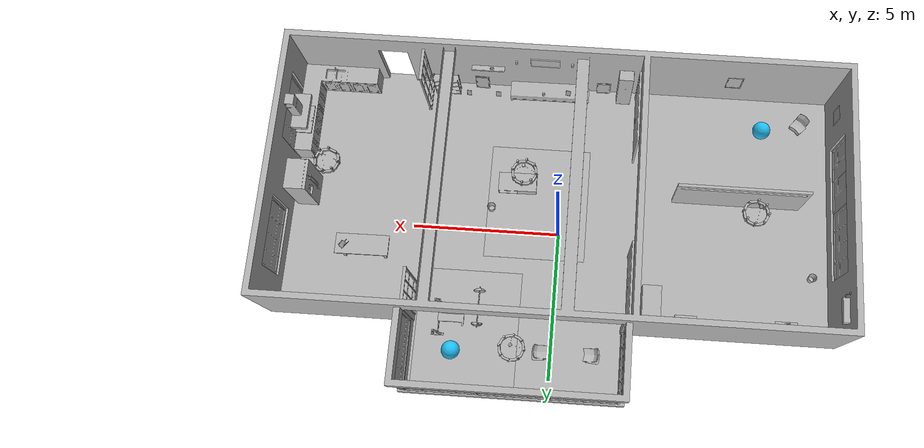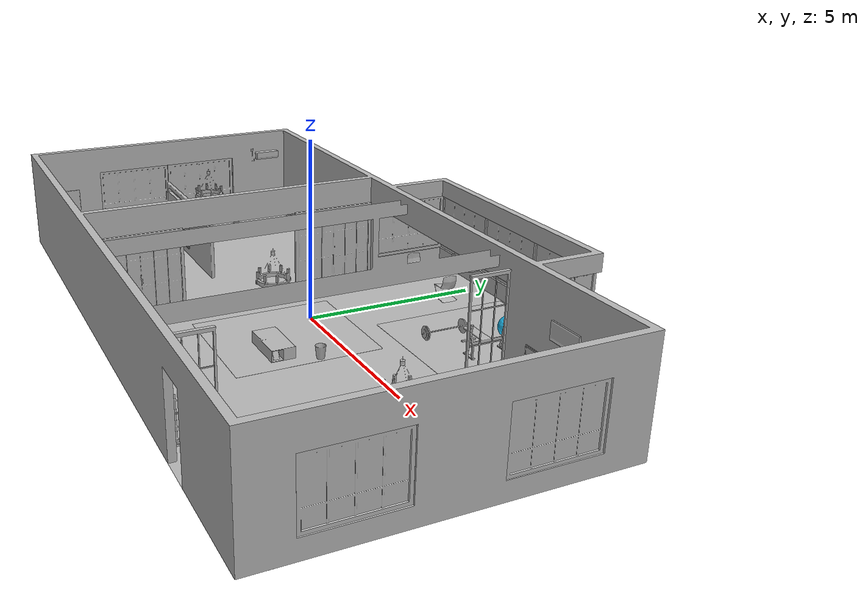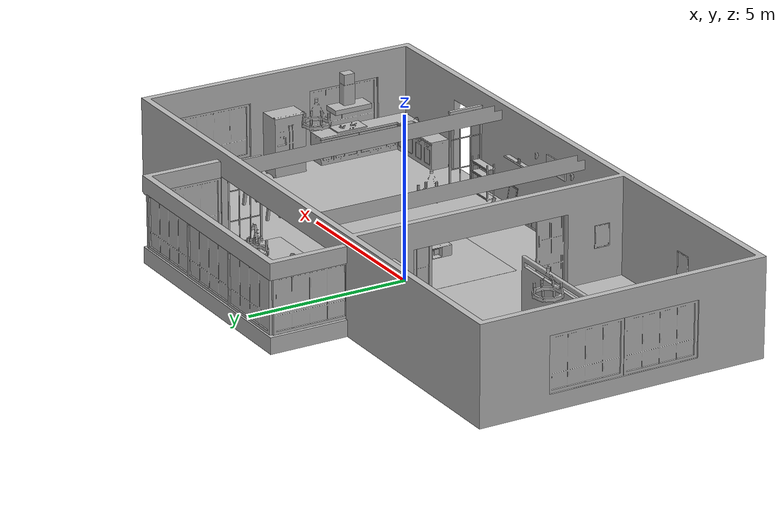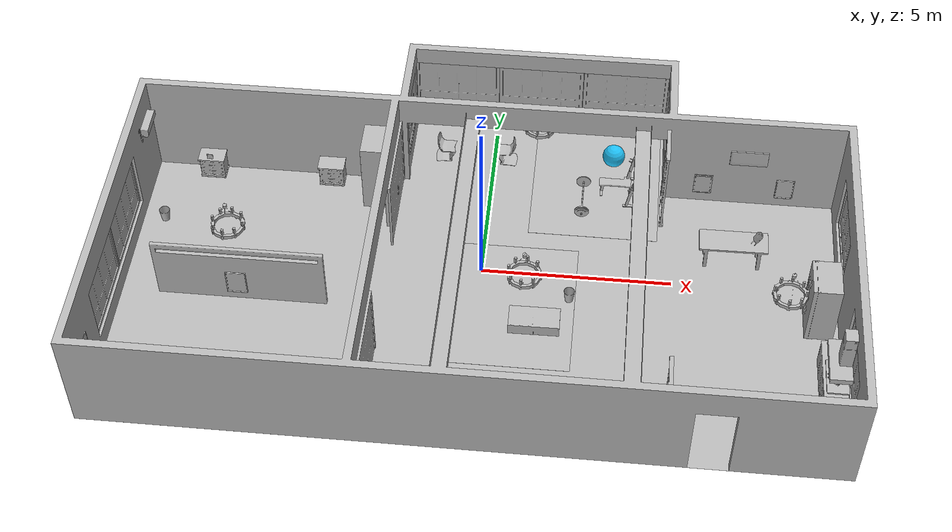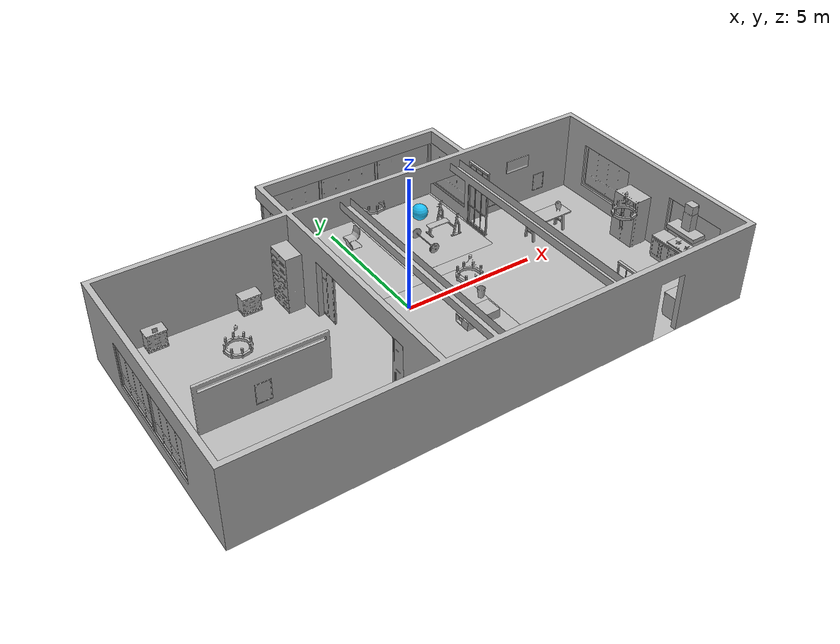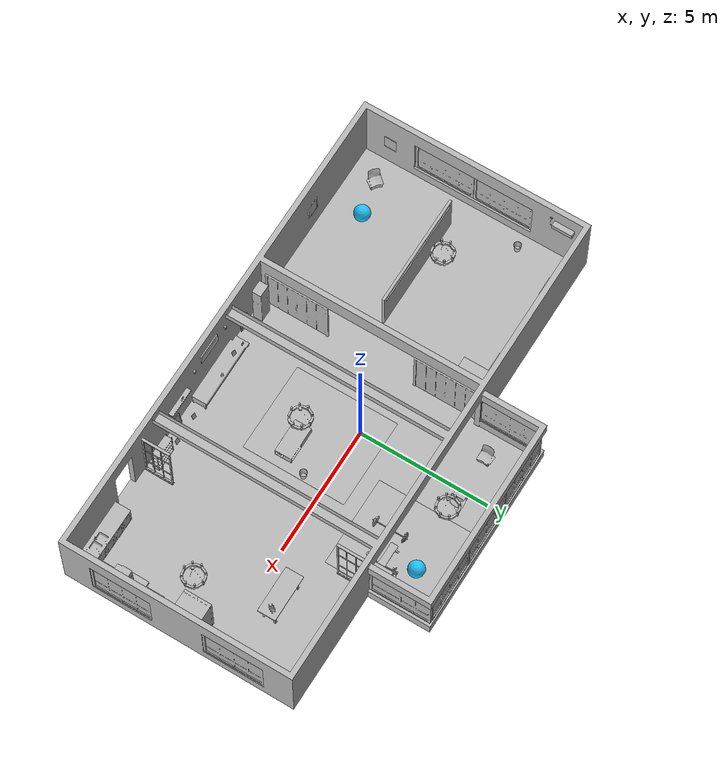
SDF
<sdf version="1.9">
 <world name="default">
  <plugin filename="libignition-gazebo-physics-system.so" name="ignition::gazebo::systems::Physics"/>
  <plugin filename="libignition-gazebo-user-commands-system.so" name="ignition::gazebo::systems::UserCommands"/>
  <plugin filename="libignition-gazebo-scene-broadcaster-system.so" name="ignition::gazebo::systems::SceneBroadcaster"/>
  <plugin filename="libignition-gazebo-sensors-system.so" name="ignition::gazebo::systems::Sensors">
   <render_engine>ogre2</render_engine>
  </plugin>
  <gravity>0 0 -9.8</gravity>
  <magnetic_field>6e-06 2.3e-05 -4.2e-05</magnetic_field>
  <atmosphere type="adiabatic"/>
  <physics name="default_physics" default="0" type="ode">
   <max_step_size>0.001</max_step_size>
   <real_time_factor>1</real_time_factor>
   <real_time_update_rate>1000</real_time_update_rate>
  </physics>
  <plugin filename="libignition-gazebo-sensors-system.so" name="ignition::gazebo::systems::Sensors">
   <render_engine>ogre2</render_engine>
  </plugin>
  <scene>
   <ambient>0.4 0.4 0.4 1</ambient>
   <background>0.7 0.7 0.7 1</background>
   <shadows>false</shadows>
   <grid>false</grid>
   <origin_visual>false</origin_visual>
  </scene>
  <spherical_coordinates>
   <surface_model>EARTH_WGS84</surface_model>
   <latitude_deg>0</latitude_deg>
   <longitude_deg>0</longitude_deg>
   <elevation>0</elevation>
   <heading_deg>0</heading_deg>
  </spherical_coordinates>
  <model name="AirconditionerA_01_001">
   <static>true</static>
   <include><uri>model://aws_robomaker_residential_AirconditionerA_01</uri></include>
   <pose>-9.199410 2.411230 2.084544 0 -0 0</pose>
  </model>
  <model name="AirconditionerB_01_001">
   <static>true</static>
   <include><uri>model://aws_robomaker_residential_AirconditionerB_01</uri></include>
   <pose>-2.004656 -5.226610 0.003485 0 -0 0</pose>
  </model>
  <model name="Ball_01_001">
   <static>true</static>
   <include><uri>model://aws_robomaker_residential_Ball_01</uri></include>
   <pose>3.295503 4.225674 0.318684 0 -0 0</pose>
  </model>
  <model name="Ball_01_003">
   <static>true</static>
   <include><uri>model://aws_robomaker_residential_Ball_01</uri></include>
   <pose>-6.945503 -4.22174 0.318684 0 -0 0</pose>
  </model>
  <model name="NightStand_01_001">
   <static>true</static>
   <include><uri>model://aws_robomaker_residential_NightStand_01</uri></include>
   <pose>-7.725510 2.860420 0.005258 -0.000002 0 0</pose>
  </model>
  <model name="NightStand_01_002">
   <static>true</static>
   <include><uri>model://aws_robomaker_residential_NightStand_01</uri></include>
   <pose>-4.407341 2.860420 0.005256 0 0.000002 0</pose>
  </model>
  <model name="Board_01_001">
   <static>true</static>
   <include><uri>model://aws_robomaker_residential_Board_01</uri></include>
   <pose>2.779073 -5.392703 1.538173 0 -0 0</pose>
  </model>
  <model name="ChairD_01_001">
   <static>true</static>
   <include><uri>model://aws_robomaker_residential_ChairD_01</uri></include>
   <pose>-1.380775 4.104456 0 0 -0 0</pose>
  </model>
  <model name="ChairD_01_002">
   <static>true</static>
   <include><uri>model://aws_robomaker_residential_ChairD_01</uri></include>
   <pose>0.325214 4.104456 0 0 -0 -3.138741</pose>
  </model>
  <model name="ChairD_01_003">
   <static>true</static>
   <include><uri>model://aws_robomaker_residential_ChairD_01</uri></include>
   <pose>-8.270775 -4.504456 0 0 -0 0.869673</pose>
  </model>
  <model name="Chandelier_01_001">
   <static>true</static>
   <include><uri>model://aws_robomaker_residential_Chandelier_01</uri></include>
   <pose>1.221061 4.155740 1.295000 0 -0 0</pose>
  </model>
  <model name="Chandelier_01_002">
   <static>true</static>
   <include><uri>model://aws_robomaker_residential_Chandelier_01</uri></include>
   <pose>-6.451061 -0.692040 1.810000 0 -0 0</pose>
  </model>
  <model name="Chandelier_01_003">
   <static>true</static>
   <include><uri>model://aws_robomaker_residential_Chandelier_01</uri></include>
   <pose>7.824061 -1.59 1.7510000 0 -0 0</pose>
  </model>
  <model name="Chandelier_01_004">
   <static>true</static>
   <include><uri>model://aws_robomaker_residential_Chandelier_01</uri></include>
   <pose>1.221061 -1.592040 1.7873000 0 -0 0</pose>
  </model>
  <model name="Carpet_01_001">
   <static>true</static>
   <include><uri>model://aws_robomaker_residential_Carpet_01</uri></include>
   <pose>0.785050 -1.106647 0.001106 0 -0 0</pose>
  </model>
  <model name="Carpet_01_002">
   <static>true</static>
   <include><uri>model://aws_robomaker_residential_Carpet_01</uri></include>
   <pose>2.854050 3.45 0.000585 0 -0 0</pose>
  </model>
  <model name="SecurityCamera_01_001">
   <static>true</static>
   <include><uri>model://aws_robomaker_residential_SecurityCamera_01</uri></include>
   <pose>0.842134 -4.996294 0.495067 0 -0 -2.841039</pose>
  </model>
  <model name="CoffeeTable_01_001">
   <static>true</static>
   <include><uri>model://aws_robomaker_residential_CoffeeTable_01</uri></include>
   <pose>1.512301 -1.733438 0.041983 0.000000 0.000000 0.01000</pose>
  </model>
  <model name="CookingBench_01_001">
   <include><uri>model://aws_robomaker_residential_CookingBench_01</uri></include>
   <pose>9.038383 -3.351140 0.903610 0 -0 3.137133</pose>
   <static>true</static>
  </model>
  <model name="KitchenTable_01_001">
   <static>true</static>
   <include><uri>model://aws_robomaker_residential_KitchenTable_01</uri></include>
   <pose>6.55269 0.951173 -0.000006 0 -0 -1.564130</pose>
  </model>
  <model name="Dumbbell_01_001">
   <static>true</static>
   <include><uri>model://aws_robomaker_residential_Dumbbell_01</uri></include>
   <pose>2.512849 2.717787 0.002183 0 -0 0</pose>
  </model>
  <model name="FitnessEquipment_01_001">
   <static>true</static>
   <include><uri>model://aws_robomaker_residential_FitnessEquipment_01</uri></include>
   <pose>3.484720 3.169104 0.003168 0 -0 0</pose>
  </model>
  <model name="FoldingDoor_01_001">
   <static>true</static>
   <include><uri>model://aws_robomaker_residential_FoldingDoor_01</uri></include>
   <pose>-2.461096 1.844219 0.041881 0 -0 0</pose>
  </model>
  <model name="FoldingDoor_01_002">
   <static>true</static>
   <include><uri>model://aws_robomaker_residential_FoldingDoor_01</uri></include>
   <pose>-2.461096 -4.053320 0.041881 0 -0 0</pose>
  </model>
  <model name="HouseWallB_01_001">
   <static>true</static>
   <include><uri>model://aws_robomaker_residential_HouseWallB_01</uri></include>
  </model>
  <model name="FloorB_01_001">
   <static>true</static>
   <include><uri>model://aws_robomaker_residential_FloorB_01</uri></include>
  </model>
  <model name="FoldingDoor_02_001">
   <static>true</static>
   <include><uri>model://aws_robomaker_residential_FoldingDoor_02</uri></include>
   <pose>4.674231 2.46451 0 0 -0 3.14159</pose>
  </model>
  <model name="FoldingDoor_02_002">
   <static>true</static>
   <include><uri>model://aws_robomaker_residential_FoldingDoor_02</uri></include>
   <pose>4.8912 -4.84968 0 0 -0 0</pose>
  </model>
  <model name="KitchenCabinet_01_001">
   <static>true</static>
   <include><uri>model://aws_robomaker_residential_KitchenCabinet_01</uri></include>
   <pose>8.002009 -3.836509 0.012068 0 -0 -3.140001</pose>
  </model>
  <model name="LightC_01_001">
   <static>true</static>
   <include><uri>model://aws_robomaker_residential_LightC_01</uri></include>
   <pose>1.769567 -5.4443710 2.000000 0 -0 0</pose>
  </model>
  <model name="LightC_01_002">
   <static>true</static>
   <include><uri>model://aws_robomaker_residential_LightC_01</uri></include>
   <pose>-0.138245 -5.4443710 2.000000 0 -0 0</pose>
  </model>
  <model name="PortraitA_01">
   <static>true</static>
   <include><uri>model://aws_robomaker_residential_PortraitA_01</uri></include>
   <pose>-2.712360 -4.817539 1.00000 0 -0 1.566796</pose>
  </model>
  <model name="PortraitB_01">
   <static>true</static>
   <include><uri>model://aws_robomaker_residential_PortraitB_01</uri></include>
   <pose>-1.279683 -5.429630 0.0 -0.076901 0 -3.116718</pose>
  </model>
  <model name="PortraitB_02">
   <static>true</static>
   <include><uri>model://aws_robomaker_residential_PortraitB_02</uri></include>
   <pose>5.737017 3.080310 0.300000 0 -0 0</pose>
  </model>
  <model name="PortraitB_03">
   <static>true</static>
   <include><uri>model://aws_robomaker_residential_PortraitB_03</uri></include>
   <pose>3.071380 -5.349366 0.005494 -0.168428 0.0 3.104232</pose>
  </model>
  <model name="PortraitA_02">
   <static>true</static>
   <include><uri>model://aws_robomaker_residential_PortraitA_02</uri></include>
   <pose>7.937017 3.080310 0.300000 0 -0 3.14</pose>
  </model>
  <model name="PortraitC_01">
   <static>true</static>
   <include><uri>model://aws_robomaker_residential_PortraitC_01</uri></include>
   <pose>-9.294904 -4.526084 1.000000 0 -0 1.554734</pose>
  </model>
  <model name="PortraitD_01">
   <static>true</static>
   <include><uri>model://aws_robomaker_residential_PortraitD_01</uri></include>
   <pose>0.789763 -5.478725 1.800000 0 -0 3.138531</pose>
  </model>
  <model name="PortraitD_02">
   <static>true</static>
   <include><uri>model://aws_robomaker_residential_PortraitD_02</uri></include>
   <pose>6.870181 3.080310 1.488439 0 -0 0</pose>
  </model>
  <model name="PortraitE_01">
   <static>true</static>
   <include><uri>model://aws_robomaker_residential_PortraitE_01</uri></include>
   <pose>-5.773094 -5.492466 1.000000 0 -0 3.132627</pose>
  </model>
  <model name="PortraitE_02">
   <static>true</static>
   <include><uri>model://aws_robomaker_residential_PortraitE_02</uri></include>
   <pose>-6.193025 -1.590208 0.3 0 -0 0.004290</pose>
  </model>
  <model name="DeskPortraitA_01">
   <static>true</static>
   <include><uri>model://aws_robomaker_residential_DeskPortraitA_01</uri></include>
   <pose>-0.036864 -5.110156 0.498660 0 -0 2.927784</pose>
  </model>
  <model name="DeskPortraitA_02">
   <static>true</static>
   <include><uri>model://aws_robomaker_residential_DeskPortraitA_02</uri></include>
   <pose>2.046082 -1.892926 0.0703880 -0.018328 -0.000441 1.576216</pose>
  </model>
  <model name="DeskPortraitC_01">
   <static>true</static>
   <include><uri>model://aws_robomaker_residential_DeskPortraitC_01</uri></include>
   <pose>-7.746377 2.731075 0.694620 0.000488 -0.000359 -0.055499</pose>
  </model>
  <model name="DeskPortraitC_02">
   <static>true</static>
   <include><uri>model://aws_robomaker_residential_DeskPortraitC_02</uri></include>
   <pose>0.964613 -1.586951 0.127676 0.001614 -0.000545 -1.578699</pose>
  </model>
  <model name="DeskPortraitD_01">
   <static>true</static>
   <include><uri>model://aws_robomaker_residential_DeskPortraitD_01</uri></include>
   <pose>2.645560 -5.376225 1.573738 0 -0 -3.112826</pose>
  </model>
  <model name="DeskPortraitD_02">
   <static>true</static>
   <include><uri>model://aws_robomaker_residential_DeskPortraitD_02</uri></include>
   <pose>-0.589211 -5.109890 0.192145 -0.000015 -0.000174 -3.112544</pose>
  </model>
  <model name="DeskPortraitD_03">
   <static>true</static>
   <include><uri>model://aws_robomaker_residential_DeskPortraitD_03</uri></include>
   <pose>1.826729 -1.464881 0.126208 0.000010 0.000006 -3.114380</pose>
  </model>
  <model name="DeskPortraitD_04">
   <static>true</static>
   <include><uri>model://aws_robomaker_residential_DeskPortraitD_04</uri></include>
   <pose>4.302132 -5.176568 0.202496 0.007118 -0.000001 3.046683</pose>
  </model>
  <model name="DeskPortraitB_01">
   <static>true</static>
   <include><uri>model://aws_robomaker_residential_DeskPortraitB_01</uri></include>
   <pose>3.547376 -5.083898 -0.012660 -0.336622 -0.000001 3.046741</pose>
  </model>
  <model name="DeskPortraitB_02">
   <static>true</static>
   <include><uri>model://aws_robomaker_residential_DeskPortraitB_02</uri></include>
   <pose>2.486270 -5.102525 -0.012660 -0.336621 0.000000 3.046798</pose>
  </model>
  <model name="Rangehood_01_001">
   <static>true</static>
   <include><uri>model://aws_robomaker_residential_Rangehood_01</uri></include>
   <pose>9.019794 -3.369940 1.507605 0 -0 0</pose>
  </model>
  <model name="Refrigerator_01_001">
   <static>true</static>
   <include><uri>model://aws_robomaker_residential_Refrigerator_01</uri></include>
   <pose>8.702731 -1.032031 0 0 -0 -1.563499</pose>
  </model>
  <model name="ShoeRack_01_001">
   <static>true</static>
   <include><uri>model://aws_robomaker_residential_ShoeRack_01</uri></include>
   <pose>4.297978 -5.173566 0 0 -0 0</pose>
  </model>
  <model name="Tableware_01_001">
   <static>true</static>
   <include><uri>model://aws_robomaker_residential_Tableware_01</uri></include>
   <pose>7.15317 0.982767 0.817812 -0.001238 -0.000976 1.02476</pose>
  </model>
  <model name="Trash_01_001">
   <static>true</static>
   <include><uri>model://aws_robomaker_residential_Trash_01</uri></include>
   <pose>2.360151 -0.796238 0.011 0 -0 0</pose>
  </model>
  <model name="Trash_01_002">
   <static>true</static>
   <include><uri>model://aws_robomaker_residential_Trash_01</uri></include>
   <pose>-8.704151 1.00058 0.011 0 -0 0</pose>
  </model>
  <model name="TVCabinet_01_001">
   <static>true</static>
   <include><uri>model://aws_robomaker_residential_TVCabinet_01</uri></include>
   <pose>0.629509 -5.183576 -0.017049 0 -0 1.5792</pose>
  </model>
  <model name="RoomWall_01_001">
   <static>true</static>
   <include><uri>model://aws_robomaker_residential_RoomWall_01</uri></include>
   <pose>-6.097550 -1.496180 0.028124 0 -0 0</pose>
  </model>
  <model name="Wardrobe_01_001">
   <static>true</static>
   <include><uri>model://aws_robomaker_residential_Wardrobe_01</uri></include>
   <pose>-3.146710 2.476204 0.000704 0 -0 -1.569673</pose>
  </model>
  <model name="RoomWindow_01_001">
   <static>true</static>
   <include><uri>model://aws_robomaker_residential_RoomWindow_01</uri></include>
   <pose>-9.418600 -0.026285 0.502739 0 -0 0</pose>
  </model>
  <model name="RoomWindow_01_002">
   <static>true</static>
   <include><uri>model://aws_robomaker_residential_RoomWindow_01</uri></include>
   <pose>-9.418600 -2.374090 0.502739 0 -0 0</pose>
  </model>
  <model name="RoomWindow_01_003">
   <static>true</static>
   <include><uri>model://aws_robomaker_residential_RoomWindow_01</uri></include>
   <pose>9.422616 -3.373981 0.502739 0 -0 -3.136099</pose>
  </model>
  <model name="RoomWindow_01_004">
   <static>true</static>
   <include><uri>model://aws_robomaker_residential_RoomWindow_01</uri></include>
   <pose>9.422558 0.968520 0.496581 0 -0 -3.136099</pose>
  </model>
  <model name="RoomWindow_01_005">
   <static>true</static>
   <include><uri>model://aws_robomaker_residential_RoomWindow_01</uri></include>
   <pose>4.722317 4.470281 0.502739 0 -0 -3.136099</pose>
  </model>
  <model name="RoomWindow_01_006">
   <static>true</static>
   <include><uri>model://aws_robomaker_residential_RoomWindow_01</uri></include>
   <pose>3.488520 5.600688 0.502739 0 -0 -1.566274</pose>
  </model>
  <model name="RoomWindow_01_007">
   <static>true</static>
   <include><uri>model://aws_robomaker_residential_RoomWindow_01</uri></include>
   <pose>1.140949 5.600688 0.502739 0 -0 -1.566274</pose>
  </model>
  <model name="RoomWindow_01_008">
   <static>true</static>
   <include><uri>model://aws_robomaker_residential_RoomWindow_01</uri></include>
   <pose>-1.199340 5.600688 0.502739 0 -0 -1.566274</pose>
  </model>
  <model name="RoomWindow_01_009">
   <static>true</static>
   <include><uri>model://aws_robomaker_residential_RoomWindow_01</uri></include>
   <pose>-2.396624 4.387607 0.502739 0 -0 0</pose>
  </model>
  <light name="LivingRoom_CeilingLight_0" type="point">
   <pose>1.194296 4.155759 2.2 0 -0 0</pose>
   <diffuse>0.5 0.5 0.5 1</diffuse>
   <specular>0.1 0.1 0.1 1</specular>
   <attenuation>
    <range>20</range>
    <constant>0.32</constant>
    <linear>0.01</linear>
    <quadratic>0.03</quadratic>
   </attenuation>
   <cast_shadows>0</cast_shadows>
   <direction>0 0 -1</direction>
  </light>
  <light name="LivingRoom_CeilingLight_1" type="point">
   <pose>1.194296 -1.589959 2.2 0 -0 0</pose>
   <diffuse>0.5 0.5 0.5 1</diffuse>
   <specular>0.1 0.1 0.1 1</specular>
   <attenuation>
    <range>20</range>
    <constant>0.05</constant>
    <linear>0.01</linear>
    <quadratic>0.09</quadratic>
   </attenuation>
   <cast_shadows>0</cast_shadows>
   <direction>0 0 -1</direction>
  </light>
  <light name="LivingRoom_WallLight_0" type="point">
   <pose>1.76956 -5.444370 2.2 0 -0 0</pose>
   <diffuse>0.24 0.24 0.24 1</diffuse>
   <specular>0.1 0.1 0.1 1</specular>
   <attenuation>
    <range>20</range>
    <constant>0.12</constant>
    <linear>0.00</linear>
    <quadratic>0.03</quadratic>
   </attenuation>
   <direction>0 0 -1</direction>
  </light>
  <light name="LivingRoom_WallLight_1" type="point">
   <pose>-0.13826 -5.444370 2.2 0 -0 0</pose>
   <diffuse>0.24 0.24 0.24 1</diffuse>
   <specular>0.1 0.1 0.1 1</specular>
   <attenuation>
    <range>20</range>
    <constant>0.12</constant>
    <linear>0.00</linear>
    <quadratic>0.03</quadratic>
   </attenuation>
   <direction>0 0 -1</direction>
  </light>
  <light name="TV_Light_0" type="point">
   <pose>0.8269 -4.939577 1.1 0 -0 0</pose>
   <diffuse>0.31372 0.31372 0.34901 1</diffuse>
   <specular>0.1 0.1 0.1 1</specular>
   <attenuation>
    <range>3</range>
    <constant>0.10</constant>
    <linear>0.04</linear>
    <quadratic>0.50</quadratic>
   </attenuation>
   <direction>0 0 -1</direction>
  </light>
  <light name="BedRoom_Portrait_Light_0" type="spot">
   <pose>-6.190379 -1.829697 1.5587 0.3 -0 0.0</pose>
   <diffuse>0.5 0.5 0.5 1</diffuse>
   <specular>0.1 0.1 0.1 1</specular>
   <attenuation>
    <range>20</range>
    <constant>0.50</constant>
    <linear>0.01</linear>
    <quadratic>0.00</quadratic>
   </attenuation>
   <spot><inner_angle>0.6</inner_angle><outer_angle>1.0</outer_angle><falloff>1.0</falloff></spot>
   <direction>0 0 -1</direction>
  </light>
  <light name="BedRoom_CeilingLight_0" type="point">
   <pose>-6.451061 -0.692040 2.000000 0 -0 0</pose>
   <diffuse>0.5 0.5 0.5 1</diffuse>
   <specular>0.1 0.1 0.1 1</specular>
   <attenuation>
    <range>20</range>
    <constant>0.32</constant>
    <linear>0.01</linear>
    <quadratic>0.03</quadratic>
   </attenuation>
   <cast_shadows>0</cast_shadows>
   <direction>0 0 -1</direction>
  </light>
  <light name="Kitchen_CeilingLight_0" type="point">
   <pose>7.8582 -1.5905 2.280000 0 -0 0</pose>
   <diffuse>0.5 0.5 0.5 1</diffuse>
   <specular>0.1 0.1 0.1 1</specular>
   <attenuation>
    <range>20</range>
    <constant>0.3</constant>
    <linear>0.01</linear>
    <quadratic>0.01</quadratic>
   </attenuation>
   <cast_shadows>0</cast_shadows>
   <direction>0 0 -1</direction>
  </light>
 </world>
</sdf>

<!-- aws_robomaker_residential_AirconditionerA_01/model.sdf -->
<sdf version="1.6">
  <model name="aws_robomaker_residential_AirconditionerA_01">
    <static>true</static>
    <link name="link">
      <inertial>
        <mass>1.0</mass>
        <inertia>
          <ixx>0.1</ixx>
          <ixy>0.0</ixy>
          <ixz>0.0</ixz>
          <iyy>0.1</iyy>
          <iyz>0.0</iyz>
          <izz>0.1</izz>
        </inertia>
      </inertial>
      <inertial>
        <mass>1</mass>
      </inertial>
      <collision name="collision">
        <geometry>
          <mesh>
            <uri>model://aws_robomaker_residential_AirconditionerA_01/meshes/aws_AirconditionerA_01_collision.DAE</uri>
            <scale>1 1 1</scale>
          </mesh>
        </geometry>
      </collision>
      <visual name="visual">
	    <geometry>
          <mesh>
            <uri>model://aws_robomaker_residential_AirconditionerA_01/meshes/aws_AirconditionerA_01_visual.DAE</uri>
          </mesh>
        </geometry>
      <meta> <layer> 1 </layer></meta>
</visual>
    </link>
	<static>1</static>
    <static>true</static>
</model>
</sdf>

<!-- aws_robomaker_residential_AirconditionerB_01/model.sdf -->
<sdf version="1.6">
  <model name="aws_robomaker_residential_AirconditionerB_01">
    <static>true</static>
    <link name="link">
      <inertial>
        <mass>1.0</mass>
        <inertia>
          <ixx>0.1</ixx>
          <ixy>0.0</ixy>
          <ixz>0.0</ixz>
          <iyy>0.1</iyy>
          <iyz>0.0</iyz>
          <izz>0.1</izz>
        </inertia>
      </inertial>
      <inertial>
        <mass>1</mass>
      </inertial>
      <collision name="collision">
        <geometry>
          <mesh>
	  <uri>model://aws_robomaker_residential_AirconditionerB_01/meshes/aws_AirconditionerB_01_collision.DAE</uri>
            <scale>1 1 1</scale>
          </mesh>
        </geometry>
      </collision>
      <visual name="visual">
	    <geometry>
          <mesh>
            <uri>model://aws_robomaker_residential_AirconditionerB_01/meshes/aws_AirconditionerB_01_visual.DAE</uri>
          </mesh>
        </geometry>
      <meta> <layer> 1 </layer></meta>
</visual>
    </link>
    <static>true</static>
</model>
</sdf>

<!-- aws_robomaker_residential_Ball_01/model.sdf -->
<sdf version="1.6">
  <model name="aws_robomaker_residential_Ball_01">
    <link name="link">
      <inertial>
        <mass>0.12</mass>
        <!-- 2r = 62cm -->
          <inertia>
            <ixx>0.030752</ixx>
            <ixy>0</ixy>
            <ixz>0</ixz>
            <iyy>0.030752</iyy>
            <iyz>0</iyz>
            <izz>0.030752</izz>
          </inertia>
      </inertial>
      <collision name="collision">

        <geometry>
          <sphere>
            <radius>0.31 </radius>
          </sphere>

        </geometry>

        <surface>
          <friction>
            <ode>
              <mu>0.85</mu>
              <mu2>0.85</mu2>
            </ode>
          </friction>

        <!-- Add some bounciness to the ball -->
          <contact>
            <ode>
              <kd>8500</kd>
              <max_vel>5.1</max_vel>
            </ode>
          </contact>
        </surface>

      </collision>
      <visual name="visual">
	    <geometry>
          <sphere>
            <radius>0.31 </radius>
          </sphere>
      </geometry>
          <material>
            <diffuse>0.12 0.76 0.97 1</diffuse>
            <ambient>0.03 0.21 0.27 1</ambient>
          </material>
      <meta> <layer> 1 </layer></meta>
</visual>
    </link>
  </model>
</sdf>

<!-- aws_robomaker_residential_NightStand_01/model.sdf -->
<sdf version="1.6">
  <model name="aws_robomaker_residential_NightStand_01">
    <static>true</static>
    <link name="link">
      <inertial>
        <mass>1.0</mass>
        <inertia>
          <ixx>0.1</ixx>
          <ixy>0.0</ixy>
          <ixz>0.0</ixz>
          <iyy>0.1</iyy>
          <iyz>0.0</iyz>
          <izz>0.1</izz>
        </inertia>
      </inertial>
      <inertial>
        <mass>13.6</mass>

        <inertia>
          <ixx>0.6165</ixx>
          <ixy>0</ixy>
          <ixz>0</ixz>
          <iyy>1.29664</iyy>
          <iyz>0</iyz>
          <izz>0.7706</izz>
        </inertia>

      </inertial>
      <collision name="collision">
        <geometry>
          <mesh>
            <uri>model://aws_robomaker_residential_NightStand_01/meshes/aws_NightStand_01_collision.DAE</uri>
            <scale>1 1 1</scale>
          </mesh>
        </geometry>
      </collision>
      <visual name="visual">
	    <geometry>
          <mesh>
            <uri>model://aws_robomaker_residential_NightStand_01/meshes/aws_NightStand_01_visual.DAE</uri>
          </mesh>
        </geometry>
      <meta> <layer> 1 </layer></meta>
</visual>
    </link>
    <static>1</static>
    <static>true</static>
</model>
</sdf>

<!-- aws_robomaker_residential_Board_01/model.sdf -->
<sdf version="1.6">
  <model name="aws_robomaker_residential_Board_01">
    <static>true</static>
    <link name="link">
      <inertial>
        <mass>1.0</mass>
        <inertia>
          <ixx>0.1</ixx>
          <ixy>0.0</ixy>
          <ixz>0.0</ixz>
          <iyy>0.1</iyy>
          <iyz>0.0</iyz>
          <izz>0.1</izz>
        </inertia>
      </inertial>
      <inertial>
        <mass>1</mass>
      </inertial>
      <collision name="collision">
        <geometry>
          <mesh>
            <uri>model://aws_robomaker_residential_Board_01/meshes/aws_Board_01_collision.DAE</uri>
            <scale>1 1 1</scale>
          </mesh>
        </geometry>
      </collision>
      <visual name="visual">
	    <geometry>
          <mesh>
            <uri>model://aws_robomaker_residential_Board_01/meshes/aws_Board_01_visual.DAE</uri>
          </mesh>
        </geometry>
      <meta> <layer> 2 </layer></meta>
</visual>
    </link>

    <static>1</static>
    <static>true</static>
</model>
</sdf>

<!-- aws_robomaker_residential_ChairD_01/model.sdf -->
<sdf version="1.6">
  <model name="aws_robomaker_residential_ChairD_01">
    <static>true</static>
    <link name="link">
      <inertial>
        <mass>1.0</mass>
        <inertia>
          <ixx>0.1</ixx>
          <ixy>0.0</ixy>
          <ixz>0.0</ixz>
          <iyy>0.1</iyy>
          <iyz>0.0</iyz>
          <izz>0.1</izz>
        </inertia>
      </inertial>

      <inertial>
        <mass>4.5</mass>
          <inertia>
            <ixy>0</ixy>
            <ixz>0</ixz>
            <iyz>0</iyz>
            <ixx>0.217</ixx>
            <iyy>0.217</iyy>
            <izz>0.067</izz>
          </inertia>
      </inertial>

      <collision name="collision">

        <geometry>
          <mesh>
            <uri>model://aws_robomaker_residential_ChairD_01/meshes/aws_ChairD_01_collision.DAE</uri>
            <scale>1 1 1</scale>
          </mesh>
        </geometry>

      </collision>
      <visual name="visual">
	    <geometry>
          <mesh>
            <uri>model://aws_robomaker_residential_ChairD_01/meshes/aws_ChairD_01_visual.DAE</uri>
          </mesh>
        </geometry>
      <meta> <layer> 1 </layer></meta>
</visual>
    </link>
    <static>true</static>
</model>
</sdf>

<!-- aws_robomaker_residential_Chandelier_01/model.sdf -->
<sdf version="1.6">
  <model name="aws_robomaker_residential_Chandelier_01">
    <link name="link">
      <inertial>
        <mass>1</mass>
      </inertial>
      <collision name="collision">
        <geometry>
          <mesh>
            <uri>model://aws_robomaker_residential_Chandelier_01/meshes/aws_Chandelier_01_collision.DAE</uri>
            <scale>1 1 1</scale>
          </mesh>
        </geometry>
      </collision>
      <visual name="visual">
	    <geometry>
          <mesh>
            <uri>model://aws_robomaker_residential_Chandelier_01/meshes/aws_Chandelier_01_visual.DAE</uri>
          </mesh>
        </geometry>
      <meta> <layer> 2 </layer></meta>
</visual>
    </link>
	<static>1</static>
  </model>
</sdf>

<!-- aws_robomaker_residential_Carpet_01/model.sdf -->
<sdf version="1.6">
  <model name="aws_robomaker_residential_Carpet_01">
    <static>true</static>
    <link name="link">
      <inertial>
        <mass>1.0</mass>
        <inertia>
          <ixx>0.1</ixx>
          <ixy>0.0</ixy>
          <ixz>0.0</ixz>
          <iyy>0.1</iyy>
          <iyz>0.0</iyz>
          <izz>0.1</izz>
        </inertia>
      </inertial>
      <inertial>
        <mass>8.1</mass>
      </inertial>

      <collision name="collision">

        <geometry>
          <mesh>
            <uri>model://aws_robomaker_residential_Carpet_01/meshes/aws_Carpet_01_collision.DAE</uri>
            <scale>1 1 0.95</scale>
          </mesh>
        </geometry>

        <surface>
          <friction>
            <ode>
              <mu>100</mu>
              <mu2>50</mu2>
            </ode>
          </friction>
          <contact>
            <ode>
            </ode>
          </contact>
        </surface>

        <pose>0 0 -0.01 0 0 0 </pose>
      </collision>

      <visual name="visual">
	    <geometry>
          <mesh>
            <uri>model://aws_robomaker_residential_Carpet_01/meshes/aws_Carpet_01_visual.DAE</uri>
          </mesh>
        </geometry>
      <meta> <layer> 1 </layer></meta>
</visual>
    </link>

    <static>1</static>

    <static>true</static>
</model>
</sdf>

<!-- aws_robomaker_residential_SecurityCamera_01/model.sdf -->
<sdf version="1.6">
  <model name="aws_robomaker_residential_SecurityCamera_01">
    <static>true</static>
    <link name="link">
      <inertial>
        <mass>1.0</mass>
        <inertia>
          <ixx>0.1</ixx>
          <ixy>0.0</ixy>
          <ixz>0.0</ixz>
          <iyy>0.1</iyy>
          <iyz>0.0</iyz>
          <izz>0.1</izz>
        </inertia>
      </inertial>
      <inertial>
        <mass>1</mass>
        <inertia>
          <ixx>18.2222</ixx>
          <ixy>0</ixy>
          <ixz>0</ixz>
          <iyy>18.2222</iyy>
          <iyz>0</iyz>
          <izz>0.0018767</izz>
        </inertia>
      </inertial>
      <collision name="collision">
        <geometry>
          <mesh>
            <uri>model://aws_robomaker_residential_SecurityCamera_01/meshes/aws_SecurityCamera_01_collision.DAE</uri>
            <scale>1 1 1</scale>
          </mesh>
        </geometry>
      </collision>
      <visual name="visual">
	    <geometry>
          <mesh>
            <uri>model://aws_robomaker_residential_SecurityCamera_01/meshes/aws_SecurityCamera_01_visual.DAE</uri>
          </mesh>
        </geometry>
        <meta>
          <layer>2</layer>
        </meta>
      </visual>
    </link>
    <static>true</static>
</model>
</sdf>

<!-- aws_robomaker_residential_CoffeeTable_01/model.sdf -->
<sdf version="1.6">
  <model name="aws_robomaker_residential_CoffeeTable_01">
    <static>true</static>
    <link name="link">
      <inertial>
        <mass>1.0</mass>
        <inertia>
          <ixx>0.1</ixx>
          <ixy>0.0</ixy>
          <ixz>0.0</ixz>
          <iyy>0.1</iyy>
          <iyz>0.0</iyz>
          <izz>0.1</izz>
        </inertia>
      </inertial>
      <inertial>
        <mass>21.7</mass>

        <inertia>
          <ixx>0.8137499999999998</ixx>
          <ixy>0</ixy>
          <ixz>0</ixz>
          <iyy>2.76675</iyy>
          <iyz>0</iyz>
          <izz>3.254</izz>
        </inertia>

      </inertial>

      <collision name="collision">
        <geometry>
          <mesh>
            <uri>model://aws_robomaker_residential_CoffeeTable_01/meshes/aws_CoffeeTable_01_collision.DAE</uri>
            <scale>1 1 1</scale>
          </mesh>
        </geometry>

        <surface>
          <contact>
            <ode>
              <max_vel>0.01</max_vel>
            </ode>
          </contact>
         </surface>
      </collision>

      <visual name="visual">
	    <geometry>
          <mesh>
            <uri>model://aws_robomaker_residential_CoffeeTable_01/meshes/aws_CoffeeTable_01_visual.DAE</uri>
          </mesh>
        </geometry>
      <meta> <layer> 1 </layer></meta>
</visual>
    </link>
    <static>1</static>
    <static>true</static>
</model>
</sdf>

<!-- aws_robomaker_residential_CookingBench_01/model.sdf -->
<sdf version="1.6">
  <model name="aws_robomaker_residential_CookingBench_01">
    <static>true</static>
    <link name="link">
      <inertial>
        <mass>1.0</mass>
        <inertia>
          <ixx>0.1</ixx>
          <ixy>0.0</ixy>
          <ixz>0.0</ixz>
          <iyy>0.1</iyy>
          <iyz>0.0</iyz>
          <izz>0.1</izz>
        </inertia>
      </inertial>
      <inertial>
        <mass>1</mass>
      </inertial>
      <collision name="collision">
        <geometry>
          <mesh>
            <uri>model://aws_robomaker_residential_CookingBench_01/meshes/aws_CookingBench_01_collision.DAE</uri>
            <scale>1 1 1</scale>
          </mesh>
        </geometry>
      </collision>
      <visual name="visual">
	    <geometry>
          <mesh>
            <uri>model://aws_robomaker_residential_CookingBench_01/meshes/aws_CookingBench_01_visual.DAE</uri>
          </mesh>
        </geometry>
      <meta> <layer> 1 </layer></meta>
</visual>
    </link>
    <static>true</static>
</model>
</sdf>

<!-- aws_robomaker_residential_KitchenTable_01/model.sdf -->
<sdf version="1.6">
  <model name="aws_robomaker_residential_KitchenTable_01">
    <link name="link">
      <inertial>
        <mass>12.3</mass>
      </inertial>
      <collision name="collision">
        <geometry>
          <mesh>
            <uri>model://aws_robomaker_residential_KitchenTable_01/meshes/aws_KitchenTable_01_collision.DAE</uri>
            <scale>1 1 1</scale>
          </mesh>
        </geometry>
      </collision>
      <visual name="visual">
	    <geometry>
          <mesh>
            <uri>model://aws_robomaker_residential_KitchenTable_01/meshes/aws_KitchenTable_01_visual.DAE</uri>
          </mesh>
        </geometry>
      <meta> <layer> 1 </layer></meta>
</visual>
    </link>
  </model>
</sdf>

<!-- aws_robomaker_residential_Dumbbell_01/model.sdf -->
<sdf version="1.6">
  <model name="aws_robomaker_residential_Dumbbell_01">
    <link name="link">
      <inertial>
        <mass>80</mass>

        <!-- slender rod -->
        <inertia>
          <ixx>14.601</ixx>
          <ixy>0</ixy>
          <ixz>0</ixz>
          <iyy>0</iyy>
          <iyz>0</iyz>
          <izz>14.601</izz>
        </inertia>
      </inertial>
      <collision name="collision">
        <geometry>
          <mesh>
            <uri>model://aws_robomaker_residential_Dumbbell_01/meshes/aws_Dumbbell_01_collision.DAE</uri>
            <scale>1 1 1</scale>
          </mesh>
        </geometry>
        <max_contacts>10</max_contacts>
          <surface>
            <contact>
              <ode/>
            </contact>
            <bounce/>
            <friction>
              <torsional>
                <ode/>
              </torsional>
              <ode/>
            </friction>
          </surface>
      </collision>
      <visual name="visual">
	    <geometry>
          <mesh>
            <uri>model://aws_robomaker_residential_Dumbbell_01/meshes/aws_Dumbbell_01_visual.DAE</uri>
          </mesh>
        </geometry>
      <meta> <layer> 1 </layer></meta>
</visual>
    </link>
    <static>1</static>
  </model>
</sdf>

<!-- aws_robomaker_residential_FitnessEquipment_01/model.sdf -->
<sdf version="1.6">
  <model name="aws_robomaker_residential_FitnessEquipment_01">
    <static>true</static>
    <link name="link">
      <inertial>
        <mass>1.0</mass>
        <inertia>
          <ixx>0.1</ixx>
          <ixy>0.0</ixy>
          <ixz>0.0</ixz>
          <iyy>0.1</iyy>
          <iyz>0.0</iyz>
          <izz>0.1</izz>
        </inertia>
      </inertial>
      <inertial>
        <mass>80</mass>
      </inertial>
      <collision name="collision">
        <geometry>
          <mesh>
            <uri>model://aws_robomaker_residential_FitnessEquipment_01/meshes/aws_FitnessEquipment_01_collision.DAE</uri>
            <scale>1 1 1</scale>
          </mesh>
        </geometry>
      </collision>
      <visual name="visual">
	    <geometry>
          <mesh>
            <uri>model://aws_robomaker_residential_FitnessEquipment_01/meshes/aws_FitnessEquipment_01_visual.DAE</uri>
          </mesh>
        </geometry>
      <meta> <layer> 1 </layer></meta>
</visual>
    </link>
  <static>1</static>
    <static>true</static>
</model>
</sdf>

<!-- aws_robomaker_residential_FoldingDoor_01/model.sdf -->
<sdf version="1.6">
  <model name="aws_robomaker_residential_FoldingDoor_01">
    <link name="link">
      <inertial>
        <mass>1</mass>
      </inertial>
      <collision name="collision">
        <geometry>
          <mesh>
            <uri>model://aws_robomaker_residential_FoldingDoor_01/meshes/aws_FoldingDoor_01_collision.DAE</uri>
            <scale>1 1 1</scale>
          </mesh>
        </geometry>
      </collision>
      <visual name="visual">
	    <geometry>
          <mesh>
            <uri>model://aws_robomaker_residential_FoldingDoor_01/meshes/aws_FoldingDoor_01_visual.DAE</uri>
          </mesh>
        </geometry>
      <meta> <layer> 2 </layer></meta>
</visual>
    </link>
	<static>1</static>
  </model>
</sdf>

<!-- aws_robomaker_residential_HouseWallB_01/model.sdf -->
<sdf version="1.6">
  <model name="aws_robomaker_residential_HouseWallB_01">
    <static>true</static>
    <link name="link">
      <inertial>
        <mass>1.0</mass>
        <inertia>
          <ixx>0.1</ixx>
          <ixy>0.0</ixy>
          <ixz>0.0</ixz>
          <iyy>0.1</iyy>
          <iyz>0.0</iyz>
          <izz>0.1</izz>
        </inertia>
      </inertial>
      <inertial>
        <mass>1</mass>
      </inertial>
      <collision name="collision">
        <geometry>
          <mesh>
            <uri>model://aws_robomaker_residential_HouseWallB_01/meshes/aws_HouseWallB_01_collision.DAE</uri>
            <scale>1 1 1</scale>
          </mesh>
        </geometry>
      </collision>
      <visual name="visual">
	    <geometry>
          <mesh>
            <uri>model://aws_robomaker_residential_HouseWallB_01/meshes/aws_HouseWallB_01_visual.DAE</uri>
          </mesh>
        </geometry>
      <meta> <layer> 2 </layer></meta>
</visual>
    </link>
<static>1</static>
    <static>true</static>
</model>
</sdf>

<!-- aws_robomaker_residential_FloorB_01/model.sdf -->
<sdf version="1.6">
  <model name="aws_robomaker_residential_FloorB_01">
    <link name="link">
      <inertial>
        <mass>100</mass>
      </inertial>

      <collision name="collision">
        <geometry>
          <mesh>
            <uri>model://aws_robomaker_residential_FloorB_01/meshes/aws_FloorB_01_collision.DAE</uri>
            <scale>1 1 0.9</scale>
          </mesh>
        </geometry>

        <surface>
          <friction>
            <ode>
              <mu>100</mu>
              <mu2>50</mu2>
            </ode>
          </friction>
        </surface>
      </collision>

      <visual name="visual">
	    <geometry>
          <mesh>
            <uri>model://aws_robomaker_residential_FloorB_01/meshes/aws_FloorB_01_visual.DAE</uri>
          </mesh>
        </geometry>
      <meta> <layer> 1 </layer></meta>
</visual>
    </link>

	<static>1</static>
  </model>
</sdf>

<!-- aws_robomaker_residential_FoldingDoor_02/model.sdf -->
<sdf version="1.6">
  <model name="aws_robomaker_residential_FoldingDoor_02">
    <link name="link">
      <inertial>
        <mass>1</mass>
      </inertial>
      <collision name="collision">
        <geometry>
          <mesh>
            <uri>model://aws_robomaker_residential_FoldingDoor_02/meshes/aws_FoldingDoor_02_collision.DAE</uri>
            <scale>1 1 1</scale>
          </mesh>
        </geometry>
      </collision>
      <visual name="visual">
	    <geometry>
          <mesh>
            <uri>model://aws_robomaker_residential_FoldingDoor_02/meshes/aws_FoldingDoor_02_visual.DAE</uri>
          </mesh>
        </geometry>
      <meta> <layer> 2 </layer></meta>
</visual>
    </link>
<static>1</static>
  </model>
</sdf>

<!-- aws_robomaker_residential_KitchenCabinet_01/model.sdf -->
<sdf version="1.6">
  <model name="aws_robomaker_residential_KitchenCabinet_01">
    <static>true</static>
    <link name="link">
      <inertial>
        <mass>1.0</mass>
        <inertia>
          <ixx>0.1</ixx>
          <ixy>0.0</ixy>
          <ixz>0.0</ixz>
          <iyy>0.1</iyy>
          <iyz>0.0</iyz>
          <izz>0.1</izz>
        </inertia>
      </inertial>
      <inertial>
        <mass>1</mass>
      </inertial>
      <collision name="collision">
        <laser_retro>0</laser_retro>
        <max_contacts>10</max_contacts>
        <geometry>
          <mesh>
            <uri>model://aws_robomaker_residential_KitchenCabinet_01/meshes/aws_KitchenCabinet_01_collision.DAE</uri>
            <scale>1 1 1</scale>
          </mesh>
        </geometry>
      </collision>
      <visual name="visual">
	    <geometry>
          <mesh>
            <uri>model://aws_robomaker_residential_KitchenCabinet_01/meshes/aws_KitchenCabinet_01_visual.DAE</uri>
          </mesh>
        </geometry>
      <meta> <layer> 1 </layer></meta>
</visual>
    </link>

    <static>1</static>
    <static>true</static>
</model>
</sdf>

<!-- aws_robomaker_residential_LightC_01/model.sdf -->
<sdf version="1.6">
  <model name="aws_robomaker_residential_LightC_01">
    <static>true</static>
    <link name="link">
      <inertial>
        <mass>1.0</mass>
        <inertia>
          <ixx>0.1</ixx>
          <ixy>0.0</ixy>
          <ixz>0.0</ixz>
          <iyy>0.1</iyy>
          <iyz>0.0</iyz>
          <izz>0.1</izz>
        </inertia>
      </inertial>
      <inertial>
        <mass>1</mass>
      </inertial>
      <collision name="collision">
        <geometry>
          <mesh>
            <uri>model://aws_robomaker_residential_LightC_01/meshes/aws_LightC_01_collision.DAE</uri>
            <scale>1 1 1</scale>
          </mesh>
        </geometry>
      </collision>
      <visual name="visual">
	    <geometry>
          <mesh>
            <uri>model://aws_robomaker_residential_LightC_01/meshes/aws_LightC_01_visual.DAE</uri>
          </mesh>
        </geometry>
      <meta> <layer> 2 </layer></meta>
</visual>
    </link>
	<static>1</static>
    <static>true</static>
</model>
</sdf>

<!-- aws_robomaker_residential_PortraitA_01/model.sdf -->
<sdf version="1.6">
  <model name="aws_robomaker_residential_PortraitA_01">
    <static>true</static>
    <link name="link">
      <inertial>
        <mass>1.0</mass>
        <inertia>
          <ixx>0.1</ixx>
          <ixy>0.0</ixy>
          <ixz>0.0</ixz>
          <iyy>0.1</iyy>
          <iyz>0.0</iyz>
          <izz>0.1</izz>
        </inertia>
      </inertial>
      <inertial>
        <mass>1</mass>
      </inertial>
      <collision name="collision">
        <geometry>
          <mesh>
            <uri>model://aws_robomaker_residential_PortraitA_01/meshes/aws_PortraitA_01_collision.DAE</uri>
            <scale>1 1 1</scale>
          </mesh>
        </geometry>
      </collision>
      <visual name="visual">
	    <geometry>
          <mesh>
            <uri>model://aws_robomaker_residential_PortraitA_01/meshes/aws_PortraitA_01_visual.DAE</uri>
          </mesh>
        </geometry>
      <meta> <layer> 2 </layer></meta>
</visual>
    </link>
	<static>1</static>
    <static>true</static>
</model>
</sdf>

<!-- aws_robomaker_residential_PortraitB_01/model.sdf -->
<sdf version="1.6">
  <model name="aws_robomaker_residential_PortraitB_01">
    <static>true</static>
    <link name="link">
      <inertial>
        <mass>1.0</mass>
        <inertia>
          <ixx>0.1</ixx>
          <ixy>0.0</ixy>
          <ixz>0.0</ixz>
          <iyy>0.1</iyy>
          <iyz>0.0</iyz>
          <izz>0.1</izz>
        </inertia>
      </inertial>
      <inertial>
        <mass>1</mass>
      </inertial>
      <collision name="collision">
        <geometry>
          <mesh>
            <uri>model://aws_robomaker_residential_PortraitB_01/meshes/aws_PortraitB_01_collision.DAE</uri>
            <scale>1 1 1</scale>
          </mesh>
        </geometry>
      </collision>
      <visual name="visual">
	    <geometry>
          <mesh>
            <uri>model://aws_robomaker_residential_PortraitB_01/meshes/aws_PortraitB_01_visual.DAE</uri>
          </mesh>
        </geometry>
      <meta> <layer> 2 </layer></meta>
</visual>
    </link>
	<static>1</static>
    <static>true</static>
</model>
</sdf>

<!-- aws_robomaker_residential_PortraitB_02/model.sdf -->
<sdf version="1.6">
  <model name="aws_robomaker_residential_PortraitB_02">
    <link name="link">
      <inertial>
        <mass>1</mass>
      </inertial>
      <collision name="collision">
        <geometry>
          <mesh>
            <uri>model://aws_robomaker_residential_PortraitB_02/meshes/aws_PortraitB_01_collision.DAE</uri>
            <scale>1 1 1</scale>
          </mesh>
        </geometry>
      </collision>
      <visual name="visual">
	    <geometry>
          <mesh>
            <uri>model://aws_robomaker_residential_PortraitB_02/meshes/aws_PortraitB_01_visual.DAE</uri>
          </mesh>
        </geometry>
      <meta> <layer> 2 </layer></meta>
</visual>
    </link>
	<static>1</static>
  </model>
</sdf>

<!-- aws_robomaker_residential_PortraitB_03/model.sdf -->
<sdf version="1.6">
  <model name="aws_robomaker_residential_PortraitB_03">
    <static>true</static>
    <link name="link">
      <inertial>
        <mass>1.0</mass>
        <inertia>
          <ixx>0.1</ixx>
          <ixy>0.0</ixy>
          <ixz>0.0</ixz>
          <iyy>0.1</iyy>
          <iyz>0.0</iyz>
          <izz>0.1</izz>
        </inertia>
      </inertial>
      <inertial>
        <mass>1</mass>
      </inertial>
      <collision name="collision">
        <geometry>
          <mesh>
            <uri>model://aws_robomaker_residential_PortraitB_03/meshes/aws_PortraitB_01_collision.DAE</uri>
            <scale>1 1 1</scale>
          </mesh>
        </geometry>
      </collision>
      <visual name="visual">
	    <geometry>
          <mesh>
            <uri>model://aws_robomaker_residential_PortraitB_03/meshes/aws_PortraitB_01_visual.DAE</uri>
          </mesh>
        </geometry>
      <meta> <layer> 2 </layer></meta>
</visual>
    </link>
	<static>1</static>
    <static>true</static>
</model>
</sdf>

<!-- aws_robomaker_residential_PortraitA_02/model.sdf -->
<sdf version="1.6">
  <model name="aws_robomaker_residential_PortraitA_02">
    <static>true</static>
    <link name="link">
      <inertial>
        <mass>1.0</mass>
        <inertia>
          <ixx>0.1</ixx>
          <ixy>0.0</ixy>
          <ixz>0.0</ixz>
          <iyy>0.1</iyy>
          <iyz>0.0</iyz>
          <izz>0.1</izz>
        </inertia>
      </inertial>
      <inertial>
        <mass>1</mass>
      </inertial>
      <collision name="collision">
        <geometry>
          <mesh>
            <uri>model://aws_robomaker_residential_PortraitA_02/meshes/aws_PortraitA_01_collision.DAE</uri>
            <scale>1 1 1</scale>
          </mesh>
        </geometry>
      </collision>
      <visual name="visual">
	    <geometry>
          <mesh>
            <uri>model://aws_robomaker_residential_PortraitA_02/meshes/aws_PortraitA_01_visual.DAE</uri>
          </mesh>
        </geometry>
      <meta> <layer> 2 </layer></meta>
</visual>
    </link>
	<static>1</static>
    <static>true</static>
</model>
</sdf>

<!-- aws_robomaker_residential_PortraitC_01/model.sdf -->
<sdf version="1.6">
  <model name="aws_robomaker_residential_PortraitC_01">
    <static>true</static>
    <link name="link">
      <inertial>
        <mass>1.0</mass>
        <inertia>
          <ixx>0.1</ixx>
          <ixy>0.0</ixy>
          <ixz>0.0</ixz>
          <iyy>0.1</iyy>
          <iyz>0.0</iyz>
          <izz>0.1</izz>
        </inertia>
      </inertial>
      <inertial>
        <mass>1</mass>
      </inertial>
      <collision name="collision">
        <geometry>
          <mesh>
            <uri>model://aws_robomaker_residential_PortraitC_01/meshes/aws_PortraitC_01_collision.DAE</uri>
            <scale>1 1 1</scale>
          </mesh>
        </geometry>
      </collision>
      <visual name="visual">
	    <geometry>
          <mesh>
            <uri>model://aws_robomaker_residential_PortraitC_01/meshes/aws_PortraitC_01_visual.DAE</uri>
          </mesh>
        </geometry>
      <meta> <layer> 2 </layer></meta>
</visual>
    </link>
	<static>1</static>
    <static>true</static>
</model>
</sdf>

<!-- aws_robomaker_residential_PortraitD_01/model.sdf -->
<sdf version="1.6">
  <model name="aws_robomaker_residential_PortraitD_01">
    <static>true</static>
    <link name="link">
      <inertial>
        <mass>1.0</mass>
        <inertia>
          <ixx>0.1</ixx>
          <ixy>0.0</ixy>
          <ixz>0.0</ixz>
          <iyy>0.1</iyy>
          <iyz>0.0</iyz>
          <izz>0.1</izz>
        </inertia>
      </inertial>

      <inertial>
        <mass>1.5</mass>
      </inertial>

      <collision name="collision">
        <geometry>
          <mesh>
            <uri>model://aws_robomaker_residential_PortraitD_01/meshes/aws_PortraitD_01_collision.DAE</uri>
            <scale>1 1 1</scale>
          </mesh>
        </geometry>

      </collision>

      <visual name="visual">
	    <geometry>
          <mesh>
            <uri>model://aws_robomaker_residential_PortraitD_01/meshes/aws_PortraitD_01_visual.DAE</uri>
          </mesh>
        </geometry>
      <meta> <layer> 2 </layer></meta>
</visual>
    </link>
	<static>1</static>
    <static>true</static>
</model>
</sdf>

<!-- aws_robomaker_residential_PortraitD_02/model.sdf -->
<sdf version="1.6">
  <model name="aws_robomaker_residential_PortraitD_02">
    <static>true</static>
    <link name="link">
      <inertial>
        <mass>1.0</mass>
        <inertia>
          <ixx>0.1</ixx>
          <ixy>0.0</ixy>
          <ixz>0.0</ixz>
          <iyy>0.1</iyy>
          <iyz>0.0</iyz>
          <izz>0.1</izz>
        </inertia>
      </inertial>

      <inertial>
        <mass>1.5</mass>
      </inertial>

      <collision name="collision">
        <geometry>
          <mesh>
            <uri>model://aws_robomaker_residential_PortraitD_02/meshes/aws_PortraitD_01_collision.DAE</uri>
            <scale>1 1 1</scale>
          </mesh>
        </geometry>

      </collision>

      <visual name="visual">
	    <geometry>
          <mesh>
            <uri>model://aws_robomaker_residential_PortraitD_02/meshes/aws_PortraitD_01_visual.DAE</uri>
          </mesh>
        </geometry>
      <meta> <layer> 2 </layer></meta>
</visual>
    </link>
	<static>1</static>
    <static>true</static>
</model>
</sdf>

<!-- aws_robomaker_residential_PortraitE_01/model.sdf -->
<sdf version="1.6">
  <model name="aws_robomaker_residential_PortraitE_01">
    <link name="link">
      <inertial>
        <mass>1</mass>
      </inertial>
      <collision name="collision">
        <geometry>
          <mesh>
            <uri>model://aws_robomaker_residential_PortraitE_01/meshes/aws_PortraitE_01_collision.DAE</uri>
            <scale>1 1 1</scale>
          </mesh>
        </geometry>
      </collision>
      <visual name="visual">
	    <geometry>
          <mesh>
            <uri>model://aws_robomaker_residential_PortraitE_01/meshes/aws_PortraitE_01_visual.DAE</uri>
          </mesh>
        </geometry>
      <meta> <layer> 2 </layer></meta>
</visual>
    </link>
	<static>1</static>
  </model>
</sdf>

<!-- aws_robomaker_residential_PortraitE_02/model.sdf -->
<sdf version="1.6">
  <model name="aws_robomaker_residential_PortraitE_02">
    <static>true</static>
    <link name="link">
      <inertial>
        <mass>1.0</mass>
        <inertia>
          <ixx>0.1</ixx>
          <ixy>0.0</ixy>
          <ixz>0.0</ixz>
          <iyy>0.1</iyy>
          <iyz>0.0</iyz>
          <izz>0.1</izz>
        </inertia>
      </inertial>
      <inertial>
        <mass>1</mass>
      </inertial>
      <collision name="collision">
        <geometry>
          <mesh>
            <uri>model://aws_robomaker_residential_PortraitE_02/meshes/aws_PortraitE_01_collision.DAE</uri>
            <scale>1 1 1</scale>
          </mesh>
        </geometry>
      </collision>
      <visual name="visual">
	    <geometry>
          <mesh>
            <uri>model://aws_robomaker_residential_PortraitE_02/meshes/aws_PortraitE_01_visual.DAE</uri>
          </mesh>
        </geometry>
      <meta> <layer> 2 </layer></meta>
</visual>
    </link>
	<static>1</static>
    <static>true</static>
</model>
</sdf>

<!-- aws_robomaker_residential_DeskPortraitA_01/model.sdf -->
<sdf version="1.6">
  <model name="aws_robomaker_residential_DeskPortraitA_01">
    <static>true</static>
    <link name="link">
      <inertial>
        <mass>1.0</mass>
        <inertia>
          <ixx>0.1</ixx>
          <ixy>0.0</ixy>
          <ixz>0.0</ixz>
          <iyy>0.1</iyy>
          <iyz>0.0</iyz>
          <izz>0.1</izz>
        </inertia>
      </inertial>

      <inertial>
        <mass>1</mass>
        <inertia>
            <ixx>0.0835</ixx>
            <ixy>0</ixy>
            <ixz>0</ixz>
            <iyy>0.16</iyy>
            <iyz>0</iyz>
            <izz>0.08347</izz>
        </inertia>
      </inertial>

      <collision name="collision">
        <geometry>
          <mesh>
            <uri>model://aws_robomaker_residential_DeskPortraitA_01/meshes/aws_DeskPortraitA_01_collision.DAE</uri>
            <scale>1 1 1</scale>
          </mesh>
        </geometry>
      </collision>

      <visual name="visual">
	    <geometry>
          <mesh>
            <uri>model://aws_robomaker_residential_DeskPortraitA_01/meshes/aws_DeskPortraitA_01_visual.DAE</uri>
          </mesh>
        </geometry>
      <meta> <layer> 1 </layer></meta>
</visual>
    </link>
    <static>true</static>
</model>
</sdf>

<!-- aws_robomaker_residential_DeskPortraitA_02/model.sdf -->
<sdf version="1.6">
  <model name="aws_robomaker_residential_DeskPortraitA_02">
    <link name="link">

      <inertial>
        <mass>1</mass>
        <inertia>
            <ixx>0.0835</ixx>
            <ixy>0</ixy>
            <ixz>0</ixz>
            <iyy>0.16</iyy>
            <iyz>0</iyz>
            <izz>0.08347</izz>
        </inertia>
      </inertial>

      <collision name="collision">
        <geometry>
          <mesh>
            <uri>model://aws_robomaker_residential_DeskPortraitA_02/meshes/aws_DeskPortraitA_01_collision.DAE</uri>
            <scale>1 1 1</scale>
          </mesh>
        </geometry>
      </collision>

      <visual name="visual">
	    <geometry>
          <mesh>
            <uri>model://aws_robomaker_residential_DeskPortraitA_02/meshes/aws_DeskPortraitA_01_visual.DAE</uri>
          </mesh>
        </geometry>
      <meta> <layer> 1 </layer></meta>
</visual>
    </link>
  </model>
</sdf>
